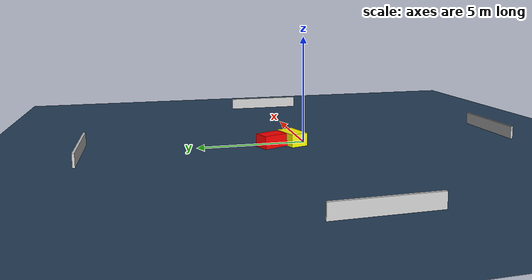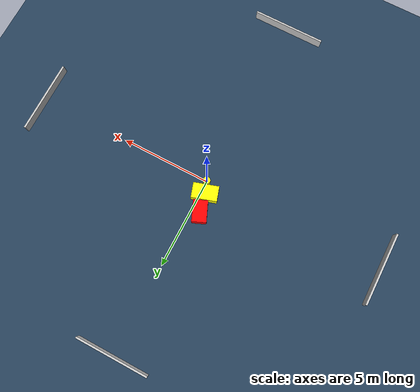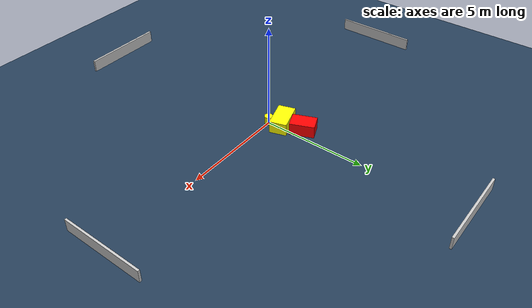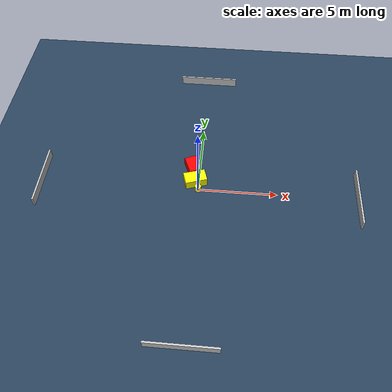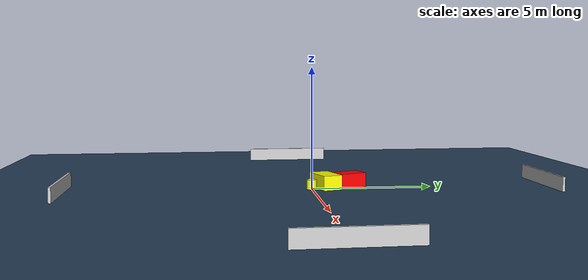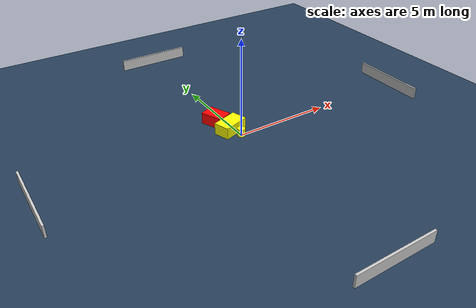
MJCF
<?xml version="1.0" ?>
<mujoco model="generated_environment">
  <option timestep="0.01" integrator="RK4" cone="elliptic"/>
  <default>
    <geom density="1"/>
  </default>
  <asset>
    <texture builtin="gradient" height="3072" name="skybox" rgb1="0.3 0.5 0.7" rgb2="0 0 0" type="skybox" width="512"/>
    <texture builtin="checker" height="300" name="groundplane" rgb1="0.2 0.3 0.4" rgb2="0.1 0.2 0.3" type="2d" width="300"/>
    <material name="groundplane" reflectance="0.2" texrepeat="5 5" texture="groundplane"/>
  </asset>
  <worldbody>
    <light dir="0 0 -1" directional="true" pos="0 0 1.5"/>
    <geom condim="3" friction="0.5 0.005 0.001" material="groundplane" name="floor" pos="0 0 0" size="0 0 0.05" type="plane"/>
    <body name="walls">
      <geom name="wall_1" condim="4" pos="-10.0 0.0 0.3" rgba="0.800000011920929 0.800000011920929 0.800000011920929 1.0" size="0.05 2.0 0.3" type="box"/>
      <geom name="wall_2" condim="4" pos="10.0 0.0 0.3" rgba="0.800000011920929 0.800000011920929 0.800000011920929 1.0" size="0.05 2.0 0.3" type="box"/>
      <geom name="wall_3" condim="4" pos="0.0 -10.0 0.3" rgba="0.800000011920929 0.800000011920929 0.800000011920929 1.0" size="2.0 0.05 0.3" type="box"/>
      <geom name="wall_4" condim="4" pos="0.0 10.0 0.3" rgba="0.800000011920929 0.800000011920929 0.800000011920929 1.0" size="2.0 0.05 0.3" type="box"/>
    </body>
    <body name="robot">
      <joint name="joint_x" type="slide" pos="0 0 0" axis="1 0 0"/>
      <joint name="joint_y" type="slide" pos="0 0 0" axis="0 1 0"/>
      <geom name="robot" type="cylinder" pos="0.0 0.0 0.2" size="0.2 0.2 0.0" mass="5.0" friction="1.0 0.005 0.0001" condim="4" rgba="1.0 1.0 0.0 1.0"/>
    </body>
    <body name="obstacle_1_movable">
      <geom name="obstacle_1_movable" condim="4" pos="-0.22969999923637408 0.6243241329449014 0.3" euler="0 0 287.6664283305818" friction="0.0 0.005 0.001" rgba="1.0 1.0 0.0 1.0" size="0.41181896440583043 0.6929357279018287 0.3" type="box" mass="0.1"/>
      <joint type="free"/>
    </body>
    <body name="obstacle_2_static">
      <geom name="obstacle_2_static" condim="4" pos="-0.4559101583186916 1.6455937139390047 0.3" euler="0 0 22.94807705392286" friction="0.0 0.005 0.001" rgba="1.0 0.0 0.0 1.0" size="0.38993431030411063 0.5857935130901559 0.3" type="box"/>
    </body>
  </worldbody>
  <actuator>
    <motor name="actuator_x" joint="joint_x" gear="1" ctrlrange="-1 1"/>
    <motor name="actuator_y" joint="joint_y" gear="1" ctrlrange="-1 1"/>
  </actuator>
</mujoco>
